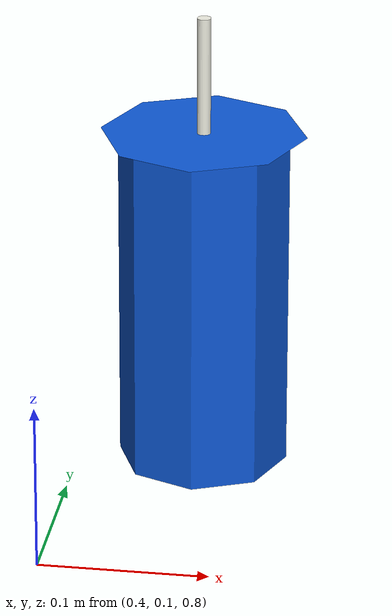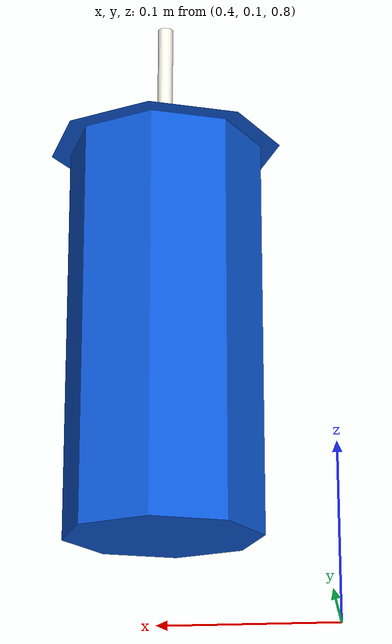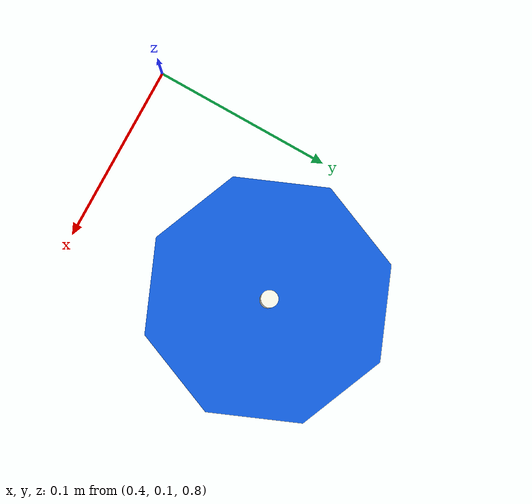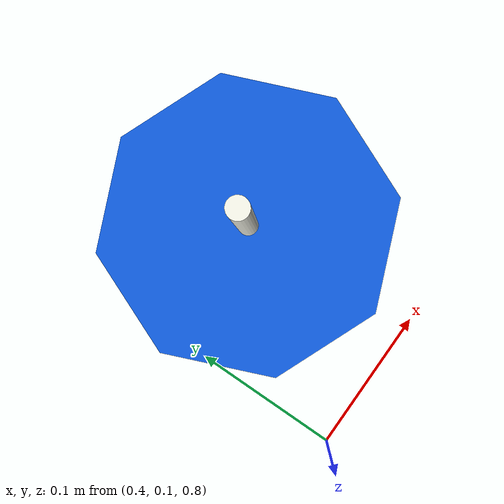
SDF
<?xml version="1.0"?>
<sdf version="1.7">
  <model name="cup">
    <!-- At the flange-down reset, this keeps the upright straw top exactly
         coincident with feeding_straw_tip_marker (the green sphere). -->
    <pose>0.481542 0.208414 0.825006 0 0 0</pose>
    <static>true</static>
    <link name="cup_link">
      <inertial>
        <mass>0.15</mass>
        <inertia>
          <ixx>0.00061906</ixx>
          <iyy>0.00061906</iyy>
          <izz>0.00018750</izz>
          <ixy>0</ixy>
          <ixz>0</ixz>
          <iyz>0</iyz>
        </inertia>
      </inertial>

      <!-- Stable simple collision; do not use the visual mesh for collision. -->
      <collision name="cup_cylinder_collision">
        <pose>0 0 0.1025 0 0 0</pose>
        <geometry>
          <cylinder>
            <radius>0.05</radius>
            <length>0.205</length>
          </cylinder>
        </geometry>
      </collision>

      <visual name="cup_mesh_visual">
        <pose>0 0 0 0 0 0</pose>
        <geometry>
          <mesh>
            <uri>model://cup/meshes/cup.dae</uri>
            <scale>1 1 1</scale>
          </mesh>
        </geometry>
      </visual>

      <!-- Visual-only straw centered in the cup. Its top is 0.070 m above
           the 0.205 m cup rim, for a total height of 0.275 m. -->
      <visual name="center_straw_visual">
        <pose>0 0 0.240 0 0 0</pose>
        <geometry>
          <cylinder>
            <radius>0.004</radius>
            <length>0.070</length>
          </cylinder>
        </geometry>
        <material>
          <ambient>0.95 0.95 0.90 1.0</ambient>
          <diffuse>0.95 0.95 0.90 1.0</diffuse>
        </material>
      </visual>
    </link>
  </model>
</sdf>
